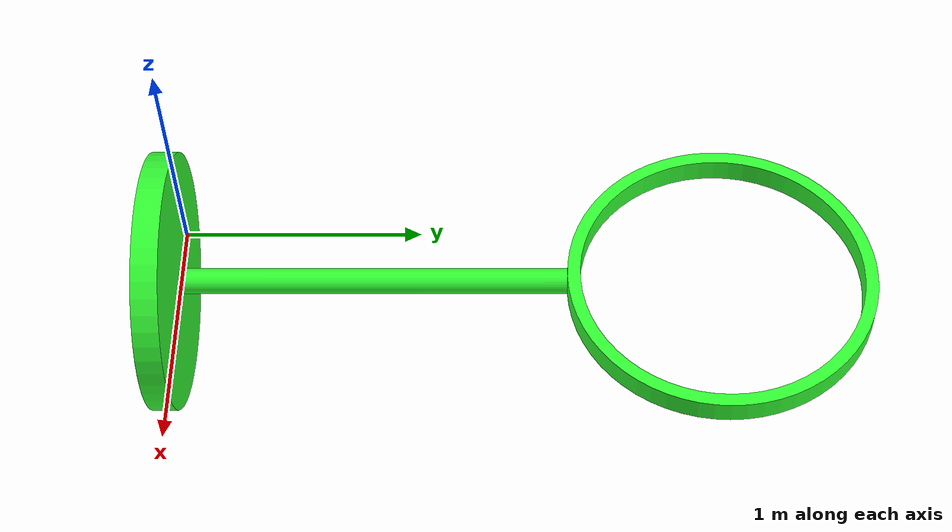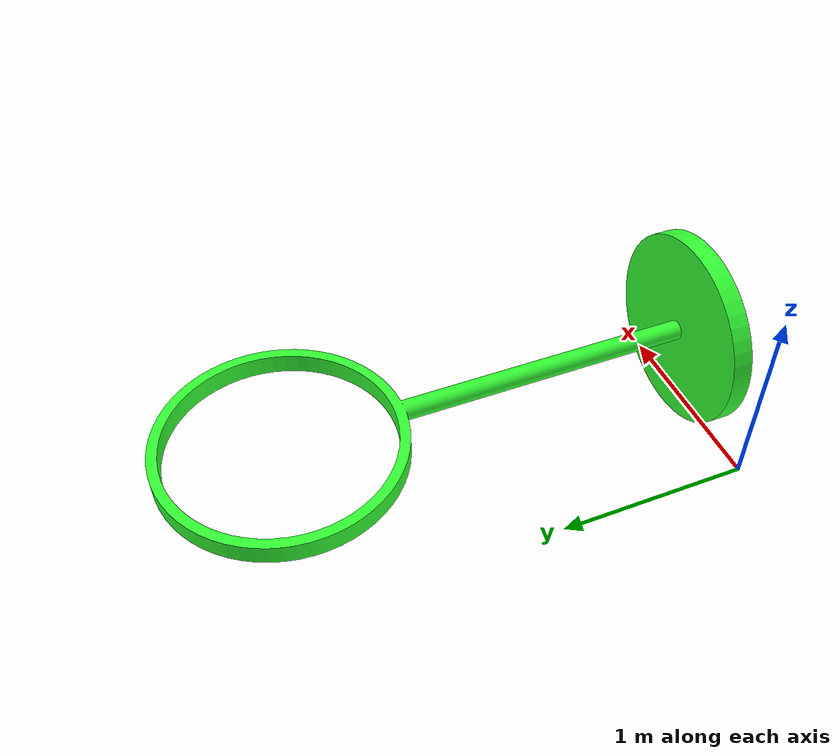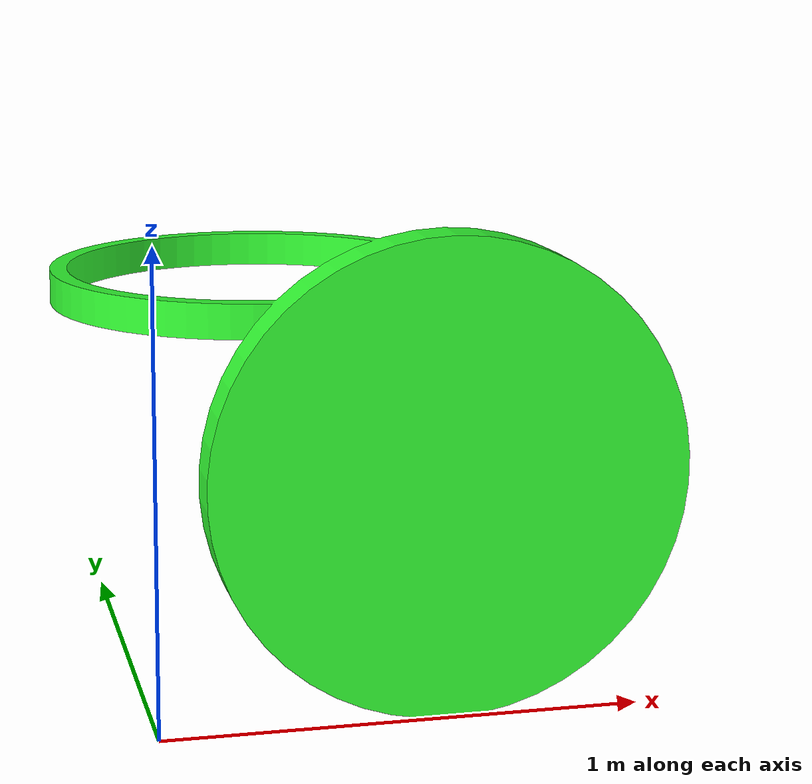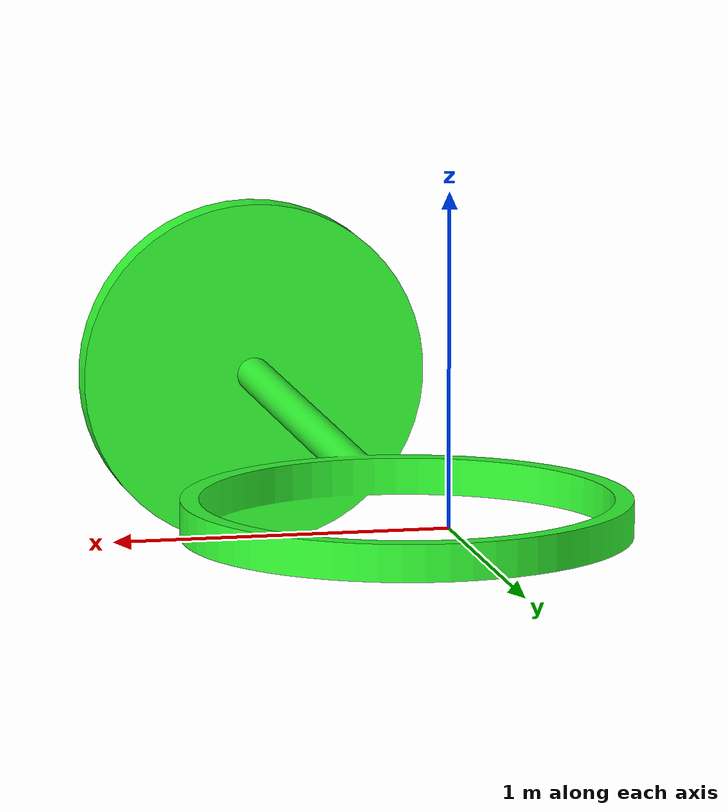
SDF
<?xml version="1.0" ?>
<sdf version="1.6">
  <model name="ring_1_5">
    <static>true</static>
    <link name="ring_link">

      <!-- Visible ring mesh -->
      <visual name="visual">
        <pose>0 0 0 0 0 0</pose>
        <geometry>
          <mesh>
            <uri>model://ring_1_5/meshes/ring_1_5.STL</uri>
            <scale>0.001 0.001 0.001</scale>
          </mesh>
        </geometry>
        <material>
          <ambient>0.2 0.8 0.2 1</ambient>
          <diffuse>0.2 1.0 0.2 1</diffuse>
        </material>
      </visual>

      <!-- Virtual collision zone (small cylinder in center, no physics) -->
      <collision name="collision">
        <pose>0 0 0 0 0 0</pose>
        <geometry>
          <cylinder>
            <radius>0.1</radius>     <!-- 20 cm wide -->
            <length>0.05</length>    <!-- 5 cm thick -->
          </cylinder>
        </geometry>
        <surface>
          <contact>
            <collide_bitmask>0</collide_bitmask> <!-- Disable physical collision -->
          </contact>
          <bounce>
            <restitution_coefficient>0.0</restitution_coefficient>
          </bounce>
          <friction>
            <ode>
              <mu>0.0</mu>
              <mu2>0.0</mu2>
            </ode>
          </friction>
        </surface>
      </collision>

      <!-- Contact sensor to detect when drone enters the virtual zone -->
      <sensor name="ring_contact_sensor" type="contact">
        <always_on>true</always_on>
        <update_rate>50</update_rate>
        <contact>
          <collision>collision</collision>
        </contact>
        <plugin name="gazebo_ros_contact" filename="libgazebo_ros_contact.so">
          <ros_topic>/ring_1_5/contact</ros_topic>
        </plugin>
      </sensor>

    </link>
  </model>
</sdf>
